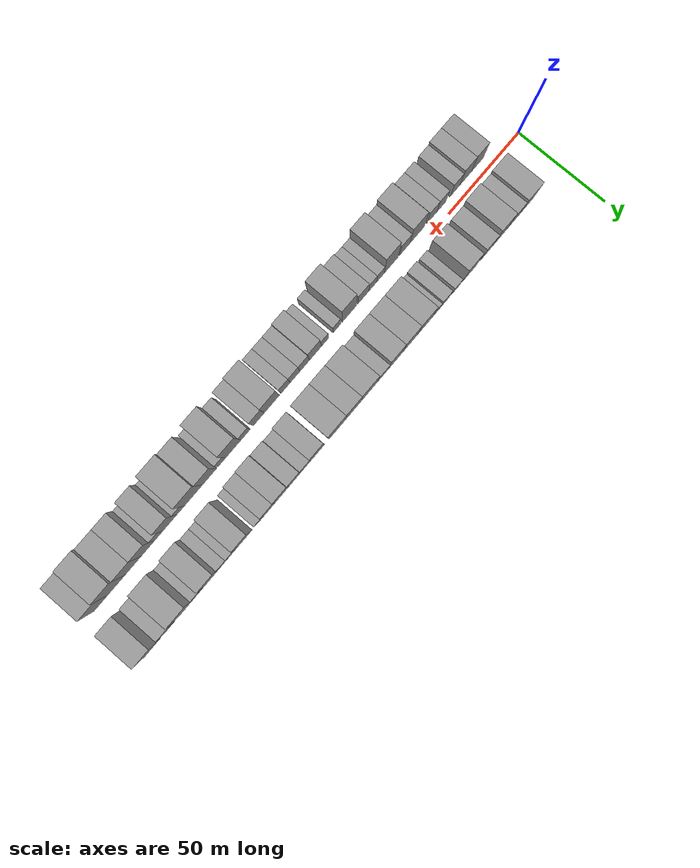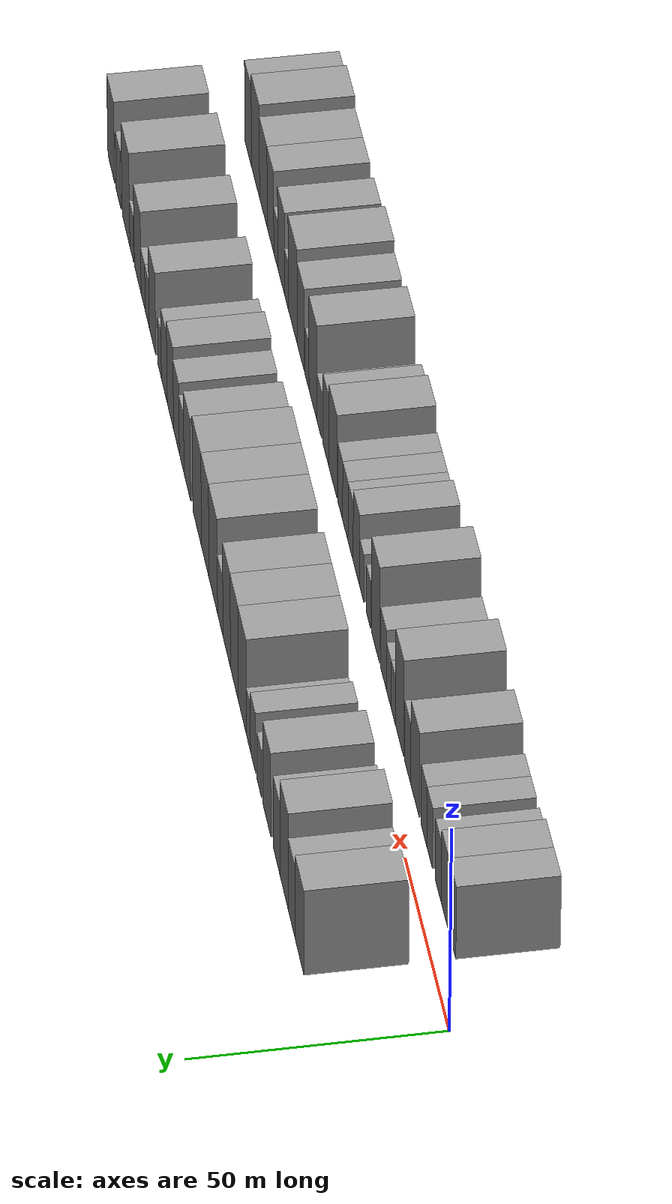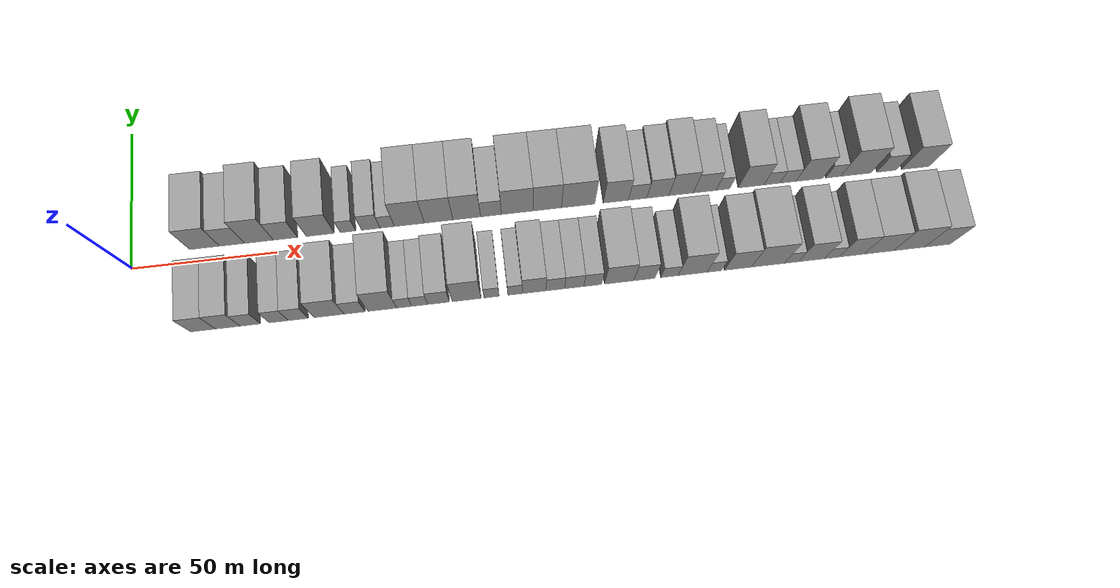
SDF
<sdf version="1.6">
 <world name="default">
  <scene>
   <sky><clouds><speed>12</speed></clouds></sky>
   <ambient>0.4 0.4 0.4 1</ambient>
   <background>0.7 0.7 0.7 1</background>
   <shadows>1</shadows>
  </scene>
  <gravity>0 0 -9.8066</gravity>
  <magnetic_field>6e-06 2.3e-05 -4.2e-05</magnetic_field>
  <physics default="0" name="default_physics" type="ode">
   <ode>
    <solver>
     <type>quick</type>
     <iters>10</iters>
     <sor>1.0</sor>
     <use_dynamic_moi_rescaling>0</use_dynamic_moi_rescaling>
    </solver>
    <constraints>
     <cfm>0</cfm>
     <erp>0.2</erp>
     <contact_max_correcting_vel>100</contact_max_correcting_vel>
     <contact_surface_layer>0.001</contact_surface_layer>
    </constraints>
   </ode>
   <max_step_size>0.004</max_step_size>
   <real_time_factor>1</real_time_factor>
   <real_time_update_rate>250</real_time_update_rate>
  </physics>
  <light name="sun" type="directional">
   <pose>0 0 10 0 0 0</pose>
   <diffuse>0.8 0.8 0.8 1</diffuse>
   <specular>0.2 0.2 0.2 1</specular>
   <attenuation>
    <range>1000</range>
    <constant>0.9</constant>
    <linear>0.01</linear>
    <quadratic>0.001</quadratic>
   </attenuation>
   <direction>-0.5 0.1 -0.9</direction>
  </light>
  <model name="building_1">
   <static>1</static>
   <pose>25.1704 14.5000 0 0.000000 0.000000 1.570796</pose>
   <link name="link">
    <pose>0 0 10.50 0 0 0</pose>
    <collision name="collision"><geometry><box><size>20.0000 10.3409 21.0000</size></box></geometry></collision>
    <visual name="visual">
     <cast_shadows>0</cast_shadows>
     <geometry><box><size>20.0000 10.3409 21.0000</size></box></geometry>
     <material>
      <script>
       <uri>model://grey_wall/materials/scripts</uri>
       <uri>model://grey_wall/materials/textures</uri>
       <name>vrc/grey_wall</name>
      </script>
     </material>
    </visual>
   </link>
  </model>
  <model name="building_2">
   <static>1</static>
   <pose>34.6016 14.5000 0 0.000000 0.000000 1.570796</pose>
   <link name="link">
    <pose>0 0 9.00 0 0 0</pose>
    <collision name="collision"><geometry><box><size>20.0000 8.5214 18.0000</size></box></geometry></collision>
    <visual name="visual">
     <cast_shadows>0</cast_shadows>
     <geometry><box><size>20.0000 8.5214 18.0000</size></box></geometry>
     <material>
      <script>
       <uri>model://grey_wall/materials/scripts</uri>
       <uri>model://grey_wall/materials/textures</uri>
       <name>vrc/grey_wall</name>
      </script>
     </material>
    </visual>
   </link>
  </model>
  <model name="building_3">
   <static>1</static>
   <pose>43.8733 14.5000 0 0.000000 0.000000 1.570796</pose>
   <link name="link">
    <pose>0 0 12.00 0 0 0</pose>
    <collision name="collision"><geometry><box><size>20.0000 10.0221 24.0000</size></box></geometry></collision>
    <visual name="visual">
     <cast_shadows>0</cast_shadows>
     <geometry><box><size>20.0000 10.0221 24.0000</size></box></geometry>
     <material>
      <script>
       <uri>model://grey_wall/materials/scripts</uri>
       <uri>model://grey_wall/materials/textures</uri>
       <name>vrc/grey_wall</name>
      </script>
     </material>
    </visual>
   </link>
  </model>
  <model name="building_4">
   <static>1</static>
   <pose>53.0661 14.5000 0 0.000000 0.000000 1.570796</pose>
   <link name="link">
    <pose>0 0 9.00 0 0 0</pose>
    <collision name="collision"><geometry><box><size>20.0000 8.3636 18.0000</size></box></geometry></collision>
    <visual name="visual">
     <cast_shadows>0</cast_shadows>
     <geometry><box><size>20.0000 8.3636 18.0000</size></box></geometry>
     <material>
      <script>
       <uri>model://grey_wall/materials/scripts</uri>
       <uri>model://grey_wall/materials/textures</uri>
       <name>vrc/grey_wall</name>
      </script>
     </material>
    </visual>
   </link>
  </model>
  <model name="building_5">
   <static>1</static>
   <pose>65.1550 14.5000 0 0.000000 0.000000 1.570796</pose>
   <link name="link">
    <pose>0 0 10.50 0 0 0</pose>
    <collision name="collision"><geometry><box><size>20.0000 9.8141 21.0000</size></box></geometry></collision>
    <visual name="visual">
     <cast_shadows>0</cast_shadows>
     <geometry><box><size>20.0000 9.8141 21.0000</size></box></geometry>
     <material>
      <script>
       <uri>model://grey_wall/materials/scripts</uri>
       <uri>model://grey_wall/materials/textures</uri>
       <name>vrc/grey_wall</name>
      </script>
     </material>
    </visual>
   </link>
  </model>
  <model name="building_6">
   <static>1</static>
   <pose>74.7743 14.5000 0 0.000000 0.000000 1.570796</pose>
   <link name="link">
    <pose>0 0 6.00 0 0 0</pose>
    <collision name="collision"><geometry><box><size>20.0000 5.4245 12.0000</size></box></geometry></collision>
    <visual name="visual">
     <cast_shadows>0</cast_shadows>
     <geometry><box><size>20.0000 5.4245 12.0000</size></box></geometry>
     <material>
      <script>
       <uri>model://grey_wall/materials/scripts</uri>
       <uri>model://grey_wall/materials/textures</uri>
       <name>vrc/grey_wall</name>
      </script>
     </material>
    </visual>
   </link>
  </model>
  <model name="building_7">
   <static>1</static>
   <pose>82.6878 14.5000 0 0.000000 0.000000 1.570796</pose>
   <link name="link">
    <pose>0 0 7.50 0 0 0</pose>
    <collision name="collision"><geometry><box><size>20.0000 6.4024 15.0000</size></box></geometry></collision>
    <visual name="visual">
     <cast_shadows>0</cast_shadows>
     <geometry><box><size>20.0000 6.4024 15.0000</size></box></geometry>
     <material>
      <script>
       <uri>model://grey_wall/materials/scripts</uri>
       <uri>model://grey_wall/materials/textures</uri>
       <name>vrc/grey_wall</name>
      </script>
     </material>
    </visual>
   </link>
  </model>
  <model name="building_8">
   <static>1</static>
   <pose>88.3976 14.5000 0 0.000000 0.000000 1.570796</pose>
   <link name="link">
    <pose>0 0 6.00 0 0 0</pose>
    <collision name="collision"><geometry><box><size>20.0000 5.0174 12.0000</size></box></geometry></collision>
    <visual name="visual">
     <cast_shadows>0</cast_shadows>
     <geometry><box><size>20.0000 5.0174 12.0000</size></box></geometry>
     <material>
      <script>
       <uri>model://grey_wall/materials/scripts</uri>
       <uri>model://grey_wall/materials/textures</uri>
       <name>vrc/grey_wall</name>
      </script>
     </material>
    </visual>
   </link>
  </model>
  <model name="building_9">
   <static>1</static>
   <pose>96.1417 14.5000 0 0.000000 0.000000 1.570796</pose>
   <link name="link">
    <pose>0 0 12.00 0 0 0</pose>
    <collision name="collision"><geometry><box><size>20.0000 10.4707 24.0000</size></box></geometry></collision>
    <visual name="visual">
     <cast_shadows>0</cast_shadows>
     <geometry><box><size>20.0000 10.4707 24.0000</size></box></geometry>
     <material>
      <script>
       <uri>model://grey_wall/materials/scripts</uri>
       <uri>model://grey_wall/materials/textures</uri>
       <name>vrc/grey_wall</name>
      </script>
     </material>
    </visual>
   </link>
  </model>
  <model name="building_10">
   <static>1</static>
   <pose>106.4000 14.5000 0 0.000000 0.000000 1.570796</pose>
   <link name="link">
    <pose>0 0 12.00 0 0 0</pose>
    <collision name="collision"><geometry><box><size>20.0000 10.0461 24.0000</size></box></geometry></collision>
    <visual name="visual">
     <cast_shadows>0</cast_shadows>
     <geometry><box><size>20.0000 10.0461 24.0000</size></box></geometry>
     <material>
      <script>
       <uri>model://grey_wall/materials/scripts</uri>
       <uri>model://grey_wall/materials/textures</uri>
       <name>vrc/grey_wall</name>
      </script>
     </material>
    </visual>
   </link>
  </model>
  <model name="building_11">
   <static>1</static>
   <pose>116.2503 14.5000 0 0.000000 0.000000 1.570796</pose>
   <link name="link">
    <pose>0 0 12.00 0 0 0</pose>
    <collision name="collision"><geometry><box><size>20.0000 9.6545 24.0000</size></box></geometry></collision>
    <visual name="visual">
     <cast_shadows>0</cast_shadows>
     <geometry><box><size>20.0000 9.6545 24.0000</size></box></geometry>
     <material>
      <script>
       <uri>model://grey_wall/materials/scripts</uri>
       <uri>model://grey_wall/materials/textures</uri>
       <name>vrc/grey_wall</name>
      </script>
     </material>
    </visual>
   </link>
  </model>
  <model name="building_12">
   <static>1</static>
   <pose>124.7280 14.5000 0 0.000000 0.000000 1.570796</pose>
   <link name="link">
    <pose>0 0 7.50 0 0 0</pose>
    <collision name="collision"><geometry><box><size>20.0000 7.3009 15.0000</size></box></geometry></collision>
    <visual name="visual">
     <cast_shadows>0</cast_shadows>
     <geometry><box><size>20.0000 7.3009 15.0000</size></box></geometry>
     <material>
      <script>
       <uri>model://grey_wall/materials/scripts</uri>
       <uri>model://grey_wall/materials/textures</uri>
       <name>vrc/grey_wall</name>
      </script>
     </material>
    </visual>
   </link>
  </model>
  <model name="building_13">
   <static>1</static>
   <pose>133.9548 14.5000 0 0.000000 0.000000 1.570796</pose>
   <link name="link">
    <pose>0 0 12.00 0 0 0</pose>
    <collision name="collision"><geometry><box><size>20.0000 11.1526 24.0000</size></box></geometry></collision>
    <visual name="visual">
     <cast_shadows>0</cast_shadows>
     <geometry><box><size>20.0000 11.1526 24.0000</size></box></geometry>
     <material>
      <script>
       <uri>model://grey_wall/materials/scripts</uri>
       <uri>model://grey_wall/materials/textures</uri>
       <name>vrc/grey_wall</name>
      </script>
     </material>
    </visual>
   </link>
  </model>
  <model name="building_14">
   <static>1</static>
   <pose>144.5431 14.5000 0 0.000000 0.000000 1.570796</pose>
   <link name="link">
    <pose>0 0 12.00 0 0 0</pose>
    <collision name="collision"><geometry><box><size>20.0000 10.0241 24.0000</size></box></geometry></collision>
    <visual name="visual">
     <cast_shadows>0</cast_shadows>
     <geometry><box><size>20.0000 10.0241 24.0000</size></box></geometry>
     <material>
      <script>
       <uri>model://grey_wall/materials/scripts</uri>
       <uri>model://grey_wall/materials/textures</uri>
       <name>vrc/grey_wall</name>
      </script>
     </material>
    </visual>
   </link>
  </model>
  <model name="building_15">
   <static>1</static>
   <pose>155.4174 14.5000 0 0.000000 0.000000 1.570796</pose>
   <link name="link">
    <pose>0 0 12.00 0 0 0</pose>
    <collision name="collision"><geometry><box><size>20.0000 11.7245 24.0000</size></box></geometry></collision>
    <visual name="visual">
     <cast_shadows>0</cast_shadows>
     <geometry><box><size>20.0000 11.7245 24.0000</size></box></geometry>
     <material>
      <script>
       <uri>model://grey_wall/materials/scripts</uri>
       <uri>model://grey_wall/materials/textures</uri>
       <name>vrc/grey_wall</name>
      </script>
     </material>
    </visual>
   </link>
  </model>
  <model name="building_16">
   <static>1</static>
   <pose>168.7396 14.5000 0 0.000000 0.000000 1.570796</pose>
   <link name="link">
    <pose>0 0 10.50 0 0 0</pose>
    <collision name="collision"><geometry><box><size>20.0000 8.9199 21.0000</size></box></geometry></collision>
    <visual name="visual">
     <cast_shadows>0</cast_shadows>
     <geometry><box><size>20.0000 8.9199 21.0000</size></box></geometry>
     <material>
      <script>
       <uri>model://grey_wall/materials/scripts</uri>
       <uri>model://grey_wall/materials/textures</uri>
       <name>vrc/grey_wall</name>
      </script>
     </material>
    </visual>
   </link>
  </model>
  <model name="building_17">
   <static>1</static>
   <pose>176.4517 14.5000 0 0.000000 0.000000 1.570796</pose>
   <link name="link">
    <pose>0 0 7.50 0 0 0</pose>
    <collision name="collision"><geometry><box><size>20.0000 6.5042 15.0000</size></box></geometry></collision>
    <visual name="visual">
     <cast_shadows>0</cast_shadows>
     <geometry><box><size>20.0000 6.5042 15.0000</size></box></geometry>
     <material>
      <script>
       <uri>model://grey_wall/materials/scripts</uri>
       <uri>model://grey_wall/materials/textures</uri>
       <name>vrc/grey_wall</name>
      </script>
     </material>
    </visual>
   </link>
  </model>
  <model name="building_18">
   <static>1</static>
   <pose>183.6140 14.5000 0 0.000000 0.000000 1.570796</pose>
   <link name="link">
    <pose>0 0 9.00 0 0 0</pose>
    <collision name="collision"><geometry><box><size>20.0000 7.8204 18.0000</size></box></geometry></collision>
    <visual name="visual">
     <cast_shadows>0</cast_shadows>
     <geometry><box><size>20.0000 7.8204 18.0000</size></box></geometry>
     <material>
      <script>
       <uri>model://grey_wall/materials/scripts</uri>
       <uri>model://grey_wall/materials/textures</uri>
       <name>vrc/grey_wall</name>
      </script>
     </material>
    </visual>
   </link>
  </model>
  <model name="building_19">
   <static>1</static>
   <pose>191.9246 14.5000 0 0.000000 0.000000 1.570796</pose>
   <link name="link">
    <pose>0 0 10.50 0 0 0</pose>
    <collision name="collision"><geometry><box><size>20.0000 8.8009 21.0000</size></box></geometry></collision>
    <visual name="visual">
     <cast_shadows>0</cast_shadows>
     <geometry><box><size>20.0000 8.8009 21.0000</size></box></geometry>
     <material>
      <script>
       <uri>model://grey_wall/materials/scripts</uri>
       <uri>model://grey_wall/materials/textures</uri>
       <name>vrc/grey_wall</name>
      </script>
     </material>
    </visual>
   </link>
  </model>
  <model name="building_20">
   <static>1</static>
   <pose>200.4165 14.5000 0 0.000000 0.000000 1.570796</pose>
   <link name="link">
    <pose>0 0 9.00 0 0 0</pose>
    <collision name="collision"><geometry><box><size>20.0000 8.1829 18.0000</size></box></geometry></collision>
    <visual name="visual">
     <cast_shadows>0</cast_shadows>
     <geometry><box><size>20.0000 8.1829 18.0000</size></box></geometry>
     <material>
      <script>
       <uri>model://grey_wall/materials/scripts</uri>
       <uri>model://grey_wall/materials/textures</uri>
       <name>vrc/grey_wall</name>
      </script>
     </material>
    </visual>
   </link>
  </model>
  <model name="building_21">
   <static>1</static>
   <pose>206.9117 14.5000 0 0.000000 0.000000 1.570796</pose>
   <link name="link">
    <pose>0 0 6.00 0 0 0</pose>
    <collision name="collision"><geometry><box><size>20.0000 4.8074 12.0000</size></box></geometry></collision>
    <visual name="visual">
     <cast_shadows>0</cast_shadows>
     <geometry><box><size>20.0000 4.8074 12.0000</size></box></geometry>
     <material>
      <script>
       <uri>model://grey_wall/materials/scripts</uri>
       <uri>model://grey_wall/materials/textures</uri>
       <name>vrc/grey_wall</name>
      </script>
     </material>
    </visual>
   </link>
  </model>
  <model name="building_22">
   <static>1</static>
   <pose>216.9380 14.5000 0 0.000000 0.000000 1.570796</pose>
   <link name="link">
    <pose>0 0 10.50 0 0 0</pose>
    <collision name="collision"><geometry><box><size>20.0000 9.2453 21.0000</size></box></geometry></collision>
    <visual name="visual">
     <cast_shadows>0</cast_shadows>
     <geometry><box><size>20.0000 9.2453 21.0000</size></box></geometry>
     <material>
      <script>
       <uri>model://grey_wall/materials/scripts</uri>
       <uri>model://grey_wall/materials/textures</uri>
       <name>vrc/grey_wall</name>
      </script>
     </material>
    </visual>
   </link>
  </model>
  <model name="building_23">
   <static>1</static>
   <pose>224.4472 14.5000 0 0.000000 0.000000 1.570796</pose>
   <link name="link">
    <pose>0 0 6.00 0 0 0</pose>
    <collision name="collision"><geometry><box><size>20.0000 5.7731 12.0000</size></box></geometry></collision>
    <visual name="visual">
     <cast_shadows>0</cast_shadows>
     <geometry><box><size>20.0000 5.7731 12.0000</size></box></geometry>
     <material>
      <script>
       <uri>model://grey_wall/materials/scripts</uri>
       <uri>model://grey_wall/materials/textures</uri>
       <name>vrc/grey_wall</name>
      </script>
     </material>
    </visual>
   </link>
  </model>
  <model name="building_24">
   <static>1</static>
   <pose>230.1848 14.5000 0 0.000000 0.000000 1.570796</pose>
   <link name="link">
    <pose>0 0 6.00 0 0 0</pose>
    <collision name="collision"><geometry><box><size>20.0000 5.7022 12.0000</size></box></geometry></collision>
    <visual name="visual">
     <cast_shadows>0</cast_shadows>
     <geometry><box><size>20.0000 5.7022 12.0000</size></box></geometry>
     <material>
      <script>
       <uri>model://grey_wall/materials/scripts</uri>
       <uri>model://grey_wall/materials/textures</uri>
       <name>vrc/grey_wall</name>
      </script>
     </material>
    </visual>
   </link>
  </model>
  <model name="building_25">
   <static>1</static>
   <pose>237.8894 14.5000 0 0.000000 0.000000 1.570796</pose>
   <link name="link">
    <pose>0 0 10.50 0 0 0</pose>
    <collision name="collision"><geometry><box><size>20.0000 9.7069 21.0000</size></box></geometry></collision>
    <visual name="visual">
     <cast_shadows>0</cast_shadows>
     <geometry><box><size>20.0000 9.7069 21.0000</size></box></geometry>
     <material>
      <script>
       <uri>model://grey_wall/materials/scripts</uri>
       <uri>model://grey_wall/materials/textures</uri>
       <name>vrc/grey_wall</name>
      </script>
     </material>
    </visual>
   </link>
  </model>
  <model name="building_26">
   <static>1</static>
   <pose>246.4669 14.5000 0 0.000000 0.000000 1.570796</pose>
   <link name="link">
    <pose>0 0 6.00 0 0 0</pose>
    <collision name="collision"><geometry><box><size>20.0000 5.4481 12.0000</size></box></geometry></collision>
    <visual name="visual">
     <cast_shadows>0</cast_shadows>
     <geometry><box><size>20.0000 5.4481 12.0000</size></box></geometry>
     <material>
      <script>
       <uri>model://grey_wall/materials/scripts</uri>
       <uri>model://grey_wall/materials/textures</uri>
       <name>vrc/grey_wall</name>
      </script>
     </material>
    </visual>
   </link>
  </model>
  <model name="building_27">
   <static>1</static>
   <pose>254.7174 14.5000 0 0.000000 0.000000 1.570796</pose>
   <link name="link">
    <pose>0 0 12.00 0 0 0</pose>
    <collision name="collision"><geometry><box><size>20.0000 11.0528 24.0000</size></box></geometry></collision>
    <visual name="visual">
     <cast_shadows>0</cast_shadows>
     <geometry><box><size>20.0000 11.0528 24.0000</size></box></geometry>
     <material>
      <script>
       <uri>model://grey_wall/materials/scripts</uri>
       <uri>model://grey_wall/materials/textures</uri>
       <name>vrc/grey_wall</name>
      </script>
     </material>
    </visual>
   </link>
  </model>
  <model name="building_28">
   <static>1</static>
   <pose>265.7575 14.5000 0 0.000000 0.000000 1.570796</pose>
   <link name="link">
    <pose>0 0 7.50 0 0 0</pose>
    <collision name="collision"><geometry><box><size>20.0000 7.0276 15.0000</size></box></geometry></collision>
    <visual name="visual">
     <cast_shadows>0</cast_shadows>
     <geometry><box><size>20.0000 7.0276 15.0000</size></box></geometry>
     <material>
      <script>
       <uri>model://grey_wall/materials/scripts</uri>
       <uri>model://grey_wall/materials/textures</uri>
       <name>vrc/grey_wall</name>
      </script>
     </material>
    </visual>
   </link>
  </model>
  <model name="building_29">
   <static>1</static>
   <pose>276.2618 14.5000 0 0.000000 0.000000 1.570796</pose>
   <link name="link">
    <pose>0 0 10.50 0 0 0</pose>
    <collision name="collision"><geometry><box><size>20.0000 9.9809 21.0000</size></box></geometry></collision>
    <visual name="visual">
     <cast_shadows>0</cast_shadows>
     <geometry><box><size>20.0000 9.9809 21.0000</size></box></geometry>
     <material>
      <script>
       <uri>model://grey_wall/materials/scripts</uri>
       <uri>model://grey_wall/materials/textures</uri>
       <name>vrc/grey_wall</name>
      </script>
     </material>
    </visual>
   </link>
  </model>
  <model name="building_30">
   <static>1</static>
   <pose>24.1833 -14.5000 0 0.000000 0.000000 1.570796</pose>
   <link name="link">
    <pose>0 0 9.00 0 0 0</pose>
    <collision name="collision"><geometry><box><size>20.0000 8.3667 18.0000</size></box></geometry></collision>
    <visual name="visual">
     <cast_shadows>0</cast_shadows>
     <geometry><box><size>20.0000 8.3667 18.0000</size></box></geometry>
     <material>
      <script>
       <uri>model://grey_wall/materials/scripts</uri>
       <uri>model://grey_wall/materials/textures</uri>
       <name>vrc/grey_wall</name>
      </script>
     </material>
    </visual>
   </link>
  </model>
  <model name="building_31">
   <static>1</static>
   <pose>32.4928 -14.5000 0 0.000000 0.000000 1.570796</pose>
   <link name="link">
    <pose>0 0 9.00 0 0 0</pose>
    <collision name="collision"><geometry><box><size>20.0000 8.2522 18.0000</size></box></geometry></collision>
    <visual name="visual">
     <cast_shadows>0</cast_shadows>
     <geometry><box><size>20.0000 8.2522 18.0000</size></box></geometry>
     <material>
      <script>
       <uri>model://grey_wall/materials/scripts</uri>
       <uri>model://grey_wall/materials/textures</uri>
       <name>vrc/grey_wall</name>
      </script>
     </material>
    </visual>
   </link>
  </model>
  <model name="building_32">
   <static>1</static>
   <pose>40.0194 -14.5000 0 0.000000 0.000000 1.570796</pose>
   <link name="link">
    <pose>0 0 7.50 0 0 0</pose>
    <collision name="collision"><geometry><box><size>20.0000 6.8011 15.0000</size></box></geometry></collision>
    <visual name="visual">
     <cast_shadows>0</cast_shadows>
     <geometry><box><size>20.0000 6.8011 15.0000</size></box></geometry>
     <material>
      <script>
       <uri>model://grey_wall/materials/scripts</uri>
       <uri>model://grey_wall/materials/textures</uri>
       <name>vrc/grey_wall</name>
      </script>
     </material>
    </visual>
   </link>
  </model>
  <model name="building_33">
   <static>1</static>
   <pose>49.6411 -14.5000 0 0.000000 0.000000 1.570796</pose>
   <link name="link">
    <pose>0 0 7.50 0 0 0</pose>
    <collision name="collision"><geometry><box><size>20.0000 6.4422 15.0000</size></box></geometry></collision>
    <visual name="visual">
     <cast_shadows>0</cast_shadows>
     <geometry><box><size>20.0000 6.4422 15.0000</size></box></geometry>
     <material>
      <script>
       <uri>model://grey_wall/materials/scripts</uri>
       <uri>model://grey_wall/materials/textures</uri>
       <name>vrc/grey_wall</name>
      </script>
     </material>
    </visual>
   </link>
  </model>
  <model name="building_34">
   <static>1</static>
   <pose>56.2244 -14.5000 0 0.000000 0.000000 1.570796</pose>
   <link name="link">
    <pose>0 0 7.50 0 0 0</pose>
    <collision name="collision"><geometry><box><size>20.0000 6.7245 15.0000</size></box></geometry></collision>
    <visual name="visual">
     <cast_shadows>0</cast_shadows>
     <geometry><box><size>20.0000 6.7245 15.0000</size></box></geometry>
     <material>
      <script>
       <uri>model://grey_wall/materials/scripts</uri>
       <uri>model://grey_wall/materials/textures</uri>
       <name>vrc/grey_wall</name>
      </script>
     </material>
    </visual>
   </link>
  </model>
  <model name="building_35">
   <static>1</static>
   <pose>66.6173 -14.5000 0 0.000000 0.000000 1.570796</pose>
   <link name="link">
    <pose>0 0 10.50 0 0 0</pose>
    <collision name="collision"><geometry><box><size>20.0000 10.0612 21.0000</size></box></geometry></collision>
    <visual name="visual">
     <cast_shadows>0</cast_shadows>
     <geometry><box><size>20.0000 10.0612 21.0000</size></box></geometry>
     <material>
      <script>
       <uri>model://grey_wall/materials/scripts</uri>
       <uri>model://grey_wall/materials/textures</uri>
       <name>vrc/grey_wall</name>
      </script>
     </material>
    </visual>
   </link>
  </model>
  <model name="building_36">
   <static>1</static>
   <pose>75.2353 -14.5000 0 0.000000 0.000000 1.570796</pose>
   <link name="link">
    <pose>0 0 7.50 0 0 0</pose>
    <collision name="collision"><geometry><box><size>20.0000 7.1747 15.0000</size></box></geometry></collision>
    <visual name="visual">
     <cast_shadows>0</cast_shadows>
     <geometry><box><size>20.0000 7.1747 15.0000</size></box></geometry>
     <material>
      <script>
       <uri>model://grey_wall/materials/scripts</uri>
       <uri>model://grey_wall/materials/textures</uri>
       <name>vrc/grey_wall</name>
      </script>
     </material>
    </visual>
   </link>
  </model>
  <model name="building_37">
   <static>1</static>
   <pose>84.6787 -14.5000 0 0.000000 0.000000 1.570796</pose>
   <link name="link">
    <pose>0 0 12.00 0 0 0</pose>
    <collision name="collision"><geometry><box><size>20.0000 9.7122 24.0000</size></box></geometry></collision>
    <visual name="visual">
     <cast_shadows>0</cast_shadows>
     <geometry><box><size>20.0000 9.7122 24.0000</size></box></geometry>
     <material>
      <script>
       <uri>model://grey_wall/materials/scripts</uri>
       <uri>model://grey_wall/materials/textures</uri>
       <name>vrc/grey_wall</name>
      </script>
     </material>
    </visual>
   </link>
  </model>
  <model name="building_38">
   <static>1</static>
   <pose>92.1009 -14.5000 0 0.000000 0.000000 1.570796</pose>
   <link name="link">
    <pose>0 0 6.00 0 0 0</pose>
    <collision name="collision"><geometry><box><size>20.0000 5.1322 12.0000</size></box></geometry></collision>
    <visual name="visual">
     <cast_shadows>0</cast_shadows>
     <geometry><box><size>20.0000 5.1322 12.0000</size></box></geometry>
     <material>
      <script>
       <uri>model://grey_wall/materials/scripts</uri>
       <uri>model://grey_wall/materials/textures</uri>
       <name>vrc/grey_wall</name>
      </script>
     </material>
    </visual>
   </link>
  </model>
  <model name="building_39">
   <static>1</static>
   <pose>97.3954 -14.5000 0 0.000000 0.000000 1.570796</pose>
   <link name="link">
    <pose>0 0 6.00 0 0 0</pose>
    <collision name="collision"><geometry><box><size>20.0000 5.4568 12.0000</size></box></geometry></collision>
    <visual name="visual">
     <cast_shadows>0</cast_shadows>
     <geometry><box><size>20.0000 5.4568 12.0000</size></box></geometry>
     <material>
      <script>
       <uri>model://grey_wall/materials/scripts</uri>
       <uri>model://grey_wall/materials/textures</uri>
       <name>vrc/grey_wall</name>
      </script>
     </material>
    </visual>
   </link>
  </model>
  <model name="building_40">
   <static>1</static>
   <pose>103.8095 -14.5000 0 0.000000 0.000000 1.570796</pose>
   <link name="link">
    <pose>0 0 7.50 0 0 0</pose>
    <collision name="collision"><geometry><box><size>20.0000 7.3714 15.0000</size></box></geometry></collision>
    <visual name="visual">
     <cast_shadows>0</cast_shadows>
     <geometry><box><size>20.0000 7.3714 15.0000</size></box></geometry>
     <material>
      <script>
       <uri>model://grey_wall/materials/scripts</uri>
       <uri>model://grey_wall/materials/textures</uri>
       <name>vrc/grey_wall</name>
      </script>
     </material>
    </visual>
   </link>
  </model>
  <model name="building_41">
   <static>1</static>
   <pose>113.3919 -14.5000 0 0.000000 0.000000 1.570796</pose>
   <link name="link">
    <pose>0 0 12.00 0 0 0</pose>
    <collision name="collision"><geometry><box><size>20.0000 9.7934 24.0000</size></box></geometry></collision>
    <visual name="visual">
     <cast_shadows>0</cast_shadows>
     <geometry><box><size>20.0000 9.7934 24.0000</size></box></geometry>
     <material>
      <script>
       <uri>model://grey_wall/materials/scripts</uri>
       <uri>model://grey_wall/materials/textures</uri>
       <name>vrc/grey_wall</name>
      </script>
     </material>
    </visual>
   </link>
  </model>
  <model name="building_42">
   <static>1</static>
   <pose>121.8750 -14.5000 0 0.000000 0.000000 1.570796</pose>
   <link name="link">
    <pose>0 0 6.00 0 0 0</pose>
    <collision name="collision"><geometry><box><size>20.0000 5.1729 12.0000</size></box></geometry></collision>
    <visual name="visual">
     <cast_shadows>0</cast_shadows>
     <geometry><box><size>20.0000 5.1729 12.0000</size></box></geometry>
     <material>
      <script>
       <uri>model://grey_wall/materials/scripts</uri>
       <uri>model://grey_wall/materials/textures</uri>
       <name>vrc/grey_wall</name>
      </script>
     </material>
    </visual>
   </link>
  </model>
  <model name="building_43">
   <static>1</static>
   <pose>129.9324 -14.5000 0 0.000000 0.000000 1.570796</pose>
   <link name="link">
    <pose>0 0 6.00 0 0 0</pose>
    <collision name="collision"><geometry><box><size>20.0000 4.9418 12.0000</size></box></geometry></collision>
    <visual name="visual">
     <cast_shadows>0</cast_shadows>
     <geometry><box><size>20.0000 4.9418 12.0000</size></box></geometry>
     <material>
      <script>
       <uri>model://grey_wall/materials/scripts</uri>
       <uri>model://grey_wall/materials/textures</uri>
       <name>vrc/grey_wall</name>
      </script>
     </material>
    </visual>
   </link>
  </model>
  <model name="building_44">
   <static>1</static>
   <pose>136.4554 -14.5000 0 0.000000 0.000000 1.570796</pose>
   <link name="link">
    <pose>0 0 9.00 0 0 0</pose>
    <collision name="collision"><geometry><box><size>20.0000 8.1042 18.0000</size></box></geometry></collision>
    <visual name="visual">
     <cast_shadows>0</cast_shadows>
     <geometry><box><size>20.0000 8.1042 18.0000</size></box></geometry>
     <material>
      <script>
       <uri>model://grey_wall/materials/scripts</uri>
       <uri>model://grey_wall/materials/textures</uri>
       <name>vrc/grey_wall</name>
      </script>
     </material>
    </visual>
   </link>
  </model>
  <model name="building_45">
   <static>1</static>
   <pose>143.7005 -14.5000 0 0.000000 0.000000 1.570796</pose>
   <link name="link">
    <pose>0 0 7.50 0 0 0</pose>
    <collision name="collision"><geometry><box><size>20.0000 6.3859 15.0000</size></box></geometry></collision>
    <visual name="visual">
     <cast_shadows>0</cast_shadows>
     <geometry><box><size>20.0000 6.3859 15.0000</size></box></geometry>
     <material>
      <script>
       <uri>model://grey_wall/materials/scripts</uri>
       <uri>model://grey_wall/materials/textures</uri>
       <name>vrc/grey_wall</name>
      </script>
     </material>
    </visual>
   </link>
  </model>
  <model name="building_46">
   <static>1</static>
   <pose>150.1850 -14.5000 0 0.000000 0.000000 1.570796</pose>
   <link name="link">
    <pose>0 0 7.50 0 0 0</pose>
    <collision name="collision"><geometry><box><size>20.0000 6.5831 15.0000</size></box></geometry></collision>
    <visual name="visual">
     <cast_shadows>0</cast_shadows>
     <geometry><box><size>20.0000 6.5831 15.0000</size></box></geometry>
     <material>
      <script>
       <uri>model://grey_wall/materials/scripts</uri>
       <uri>model://grey_wall/materials/textures</uri>
       <name>vrc/grey_wall</name>
      </script>
     </material>
    </visual>
   </link>
  </model>
  <model name="building_47">
   <static>1</static>
   <pose>156.5434 -14.5000 0 0.000000 0.000000 1.570796</pose>
   <link name="link">
    <pose>0 0 7.50 0 0 0</pose>
    <collision name="collision"><geometry><box><size>20.0000 6.1337 15.0000</size></box></geometry></collision>
    <visual name="visual">
     <cast_shadows>0</cast_shadows>
     <geometry><box><size>20.0000 6.1337 15.0000</size></box></geometry>
     <material>
      <script>
       <uri>model://grey_wall/materials/scripts</uri>
       <uri>model://grey_wall/materials/textures</uri>
       <name>vrc/grey_wall</name>
      </script>
     </material>
    </visual>
   </link>
  </model>
  <model name="building_48">
   <static>1</static>
   <pose>165.6646 -14.5000 0 0.000000 0.000000 1.570796</pose>
   <link name="link">
    <pose>0 0 10.50 0 0 0</pose>
    <collision name="collision"><geometry><box><size>20.0000 10.1088 21.0000</size></box></geometry></collision>
    <visual name="visual">
     <cast_shadows>0</cast_shadows>
     <geometry><box><size>20.0000 10.1088 21.0000</size></box></geometry>
     <material>
      <script>
       <uri>model://grey_wall/materials/scripts</uri>
       <uri>model://grey_wall/materials/textures</uri>
       <name>vrc/grey_wall</name>
      </script>
     </material>
    </visual>
   </link>
  </model>
  <model name="building_49">
   <static>1</static>
   <pose>174.3967 -14.5000 0 0.000000 0.000000 1.570796</pose>
   <link name="link">
    <pose>0 0 9.00 0 0 0</pose>
    <collision name="collision"><geometry><box><size>20.0000 7.3554 18.0000</size></box></geometry></collision>
    <visual name="visual">
     <cast_shadows>0</cast_shadows>
     <geometry><box><size>20.0000 7.3554 18.0000</size></box></geometry>
     <material>
      <script>
       <uri>model://grey_wall/materials/scripts</uri>
       <uri>model://grey_wall/materials/textures</uri>
       <name>vrc/grey_wall</name>
      </script>
     </material>
    </visual>
   </link>
  </model>
  <model name="building_50">
   <static>1</static>
   <pose>183.0733 -14.5000 0 0.000000 0.000000 1.570796</pose>
   <link name="link">
    <pose>0 0 6.00 0 0 0</pose>
    <collision name="collision"><geometry><box><size>20.0000 5.9979 12.0000</size></box></geometry></collision>
    <visual name="visual">
     <cast_shadows>0</cast_shadows>
     <geometry><box><size>20.0000 5.9979 12.0000</size></box></geometry>
     <material>
      <script>
       <uri>model://grey_wall/materials/scripts</uri>
       <uri>model://grey_wall/materials/textures</uri>
       <name>vrc/grey_wall</name>
      </script>
     </material>
    </visual>
   </link>
  </model>
  <model name="building_51">
   <static>1</static>
   <pose>191.1283 -14.5000 0 0.000000 0.000000 1.570796</pose>
   <link name="link">
    <pose>0 0 12.00 0 0 0</pose>
    <collision name="collision"><geometry><box><size>20.0000 10.1120 24.0000</size></box></geometry></collision>
    <visual name="visual">
     <cast_shadows>0</cast_shadows>
     <geometry><box><size>20.0000 10.1120 24.0000</size></box></geometry>
     <material>
      <script>
       <uri>model://grey_wall/materials/scripts</uri>
       <uri>model://grey_wall/materials/textures</uri>
       <name>vrc/grey_wall</name>
      </script>
     </material>
    </visual>
   </link>
  </model>
  <model name="building_52">
   <static>1</static>
   <pose>198.7082 -14.5000 0 0.000000 0.000000 1.570796</pose>
   <link name="link">
    <pose>0 0 6.00 0 0 0</pose>
    <collision name="collision"><geometry><box><size>20.0000 5.0478 12.0000</size></box></geometry></collision>
    <visual name="visual">
     <cast_shadows>0</cast_shadows>
     <geometry><box><size>20.0000 5.0478 12.0000</size></box></geometry>
     <material>
      <script>
       <uri>model://grey_wall/materials/scripts</uri>
       <uri>model://grey_wall/materials/textures</uri>
       <name>vrc/grey_wall</name>
      </script>
     </material>
    </visual>
   </link>
  </model>
  <model name="building_53">
   <static>1</static>
   <pose>206.8906 -14.5000 0 0.000000 0.000000 1.570796</pose>
   <link name="link">
    <pose>0 0 10.50 0 0 0</pose>
    <collision name="collision"><geometry><box><size>20.0000 9.3170 21.0000</size></box></geometry></collision>
    <visual name="visual">
     <cast_shadows>0</cast_shadows>
     <geometry><box><size>20.0000 9.3170 21.0000</size></box></geometry>
     <material>
      <script>
       <uri>model://grey_wall/materials/scripts</uri>
       <uri>model://grey_wall/materials/textures</uri>
       <name>vrc/grey_wall</name>
      </script>
     </material>
    </visual>
   </link>
  </model>
  <model name="building_54">
   <static>1</static>
   <pose>217.4031 -14.5000 0 0.000000 0.000000 1.570796</pose>
   <link name="link">
    <pose>0 0 12.00 0 0 0</pose>
    <collision name="collision"><geometry><box><size>20.0000 11.7080 24.0000</size></box></geometry></collision>
    <visual name="visual">
     <cast_shadows>0</cast_shadows>
     <geometry><box><size>20.0000 11.7080 24.0000</size></box></geometry>
     <material>
      <script>
       <uri>model://grey_wall/materials/scripts</uri>
       <uri>model://grey_wall/materials/textures</uri>
       <name>vrc/grey_wall</name>
      </script>
     </material>
    </visual>
   </link>
  </model>
  <model name="building_55">
   <static>1</static>
   <pose>225.6625 -14.5000 0 0.000000 0.000000 1.570796</pose>
   <link name="link">
    <pose>0 0 6.00 0 0 0</pose>
    <collision name="collision"><geometry><box><size>20.0000 4.8109 12.0000</size></box></geometry></collision>
    <visual name="visual">
     <cast_shadows>0</cast_shadows>
     <geometry><box><size>20.0000 4.8109 12.0000</size></box></geometry>
     <material>
      <script>
       <uri>model://grey_wall/materials/scripts</uri>
       <uri>model://grey_wall/materials/textures</uri>
       <name>vrc/grey_wall</name>
      </script>
     </material>
    </visual>
   </link>
  </model>
  <model name="building_56">
   <static>1</static>
   <pose>232.6050 -14.5000 0 0.000000 0.000000 1.570796</pose>
   <link name="link">
    <pose>0 0 10.50 0 0 0</pose>
    <collision name="collision"><geometry><box><size>20.0000 9.0741 21.0000</size></box></geometry></collision>
    <visual name="visual">
     <cast_shadows>0</cast_shadows>
     <geometry><box><size>20.0000 9.0741 21.0000</size></box></geometry>
     <material>
      <script>
       <uri>model://grey_wall/materials/scripts</uri>
       <uri>model://grey_wall/materials/textures</uri>
       <name>vrc/grey_wall</name>
      </script>
     </material>
    </visual>
   </link>
  </model>
  <model name="building_57">
   <static>1</static>
   <pose>239.7420 -14.5000 0 0.000000 0.000000 1.570796</pose>
   <link name="link">
    <pose>0 0 6.00 0 0 0</pose>
    <collision name="collision"><geometry><box><size>20.0000 5.2000 12.0000</size></box></geometry></collision>
    <visual name="visual">
     <cast_shadows>0</cast_shadows>
     <geometry><box><size>20.0000 5.2000 12.0000</size></box></geometry>
     <material>
      <script>
       <uri>model://grey_wall/materials/scripts</uri>
       <uri>model://grey_wall/materials/textures</uri>
       <name>vrc/grey_wall</name>
      </script>
     </material>
    </visual>
   </link>
  </model>
  <model name="building_58">
   <static>1</static>
   <pose>246.7498 -14.5000 0 0.000000 0.000000 1.570796</pose>
   <link name="link">
    <pose>0 0 10.50 0 0 0</pose>
    <collision name="collision"><geometry><box><size>20.0000 8.8156 21.0000</size></box></geometry></collision>
    <visual name="visual">
     <cast_shadows>0</cast_shadows>
     <geometry><box><size>20.0000 8.8156 21.0000</size></box></geometry>
     <material>
      <script>
       <uri>model://grey_wall/materials/scripts</uri>
       <uri>model://grey_wall/materials/textures</uri>
       <name>vrc/grey_wall</name>
      </script>
     </material>
    </visual>
   </link>
  </model>
  <model name="building_59">
   <static>1</static>
   <pose>256.3317 -14.5000 0 0.000000 0.000000 1.570796</pose>
   <link name="link">
    <pose>0 0 10.50 0 0 0</pose>
    <collision name="collision"><geometry><box><size>20.0000 10.3483 21.0000</size></box></geometry></collision>
    <visual name="visual">
     <cast_shadows>0</cast_shadows>
     <geometry><box><size>20.0000 10.3483 21.0000</size></box></geometry>
     <material>
      <script>
       <uri>model://grey_wall/materials/scripts</uri>
       <uri>model://grey_wall/materials/textures</uri>
       <name>vrc/grey_wall</name>
      </script>
     </material>
    </visual>
   </link>
  </model>
  <model name="building_60">
   <static>1</static>
   <pose>266.9760 -14.5000 0 0.000000 0.000000 1.570796</pose>
   <link name="link">
    <pose>0 0 12.00 0 0 0</pose>
    <collision name="collision"><geometry><box><size>20.0000 10.9403 24.0000</size></box></geometry></collision>
    <visual name="visual">
     <cast_shadows>0</cast_shadows>
     <geometry><box><size>20.0000 10.9403 24.0000</size></box></geometry>
     <material>
      <script>
       <uri>model://grey_wall/materials/scripts</uri>
       <uri>model://grey_wall/materials/textures</uri>
       <name>vrc/grey_wall</name>
      </script>
     </material>
    </visual>
   </link>
  </model>
  <model name="building_61">
   <static>1</static>
   <pose>276.9986 -14.5000 0 0.000000 0.000000 1.570796</pose>
   <link name="link">
    <pose>0 0 10.50 0 0 0</pose>
    <collision name="collision"><geometry><box><size>20.0000 9.1049 21.0000</size></box></geometry></collision>
    <visual name="visual">
     <cast_shadows>0</cast_shadows>
     <geometry><box><size>20.0000 9.1049 21.0000</size></box></geometry>
     <material>
      <script>
       <uri>model://grey_wall/materials/scripts</uri>
       <uri>model://grey_wall/materials/textures</uri>
       <name>vrc/grey_wall</name>
      </script>
     </material>
    </visual>
   </link>
  </model>
 </world>
</sdf>
